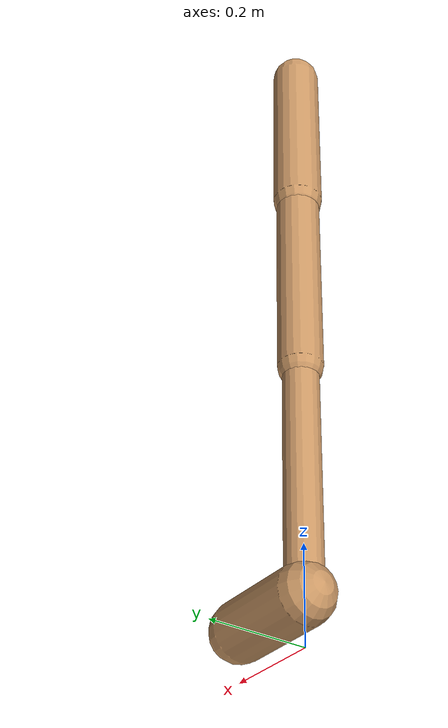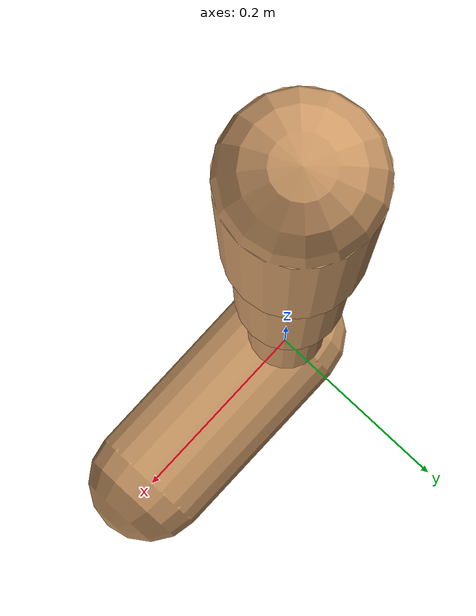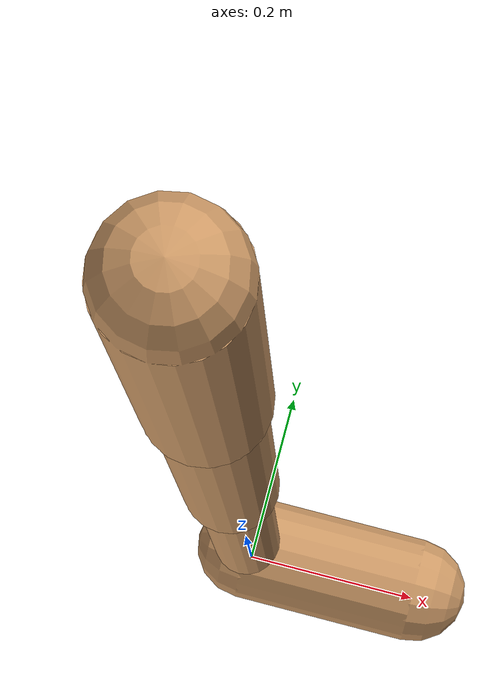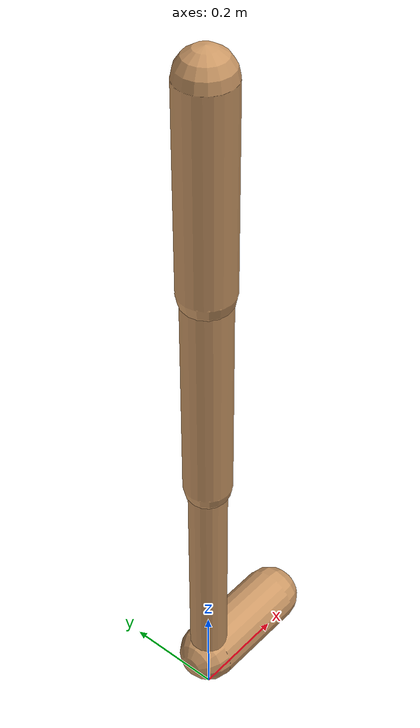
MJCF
<mujoco model="walker2d">
  <compiler angle="degree" coordinate="global" inertiafromgeom="true" />
  <default>
    <joint armature="0.01" damping=".1" limited="true" />
    <geom conaffinity="0" condim="3" contype="1" density="1000" friction="0.8 .1 .1" rgba="0.8 0.6 .4 1" />
  </default>
  <option integrator="RK4" timestep="0.002" />
  <worldbody>

    <body name="torso" pos="0 0 0.009601264277664232">
      <joint armature="0" axis="1 0 0" damping="0" limited="false" name="ignorex" pos="0 0 0" stiffness="0" type="slide" />
      <joint armature="0" axis="0 0 1" damping="0" limited="false" name="ignorez" pos="0 0 0" ref="1.25" stiffness="0" type="slide" />
      <joint armature="0" axis="0 1 0" damping="0" limited="false" name="ignorey" pos="0 0 0" stiffness="0" type="hinge" />
      <geom fromto="0 0 1.45 0 0 1.05" name="torso_geom" size="0.053742403982658976" type="capsule" />
      <body name="thigh">
        <joint axis="0 -1 0" name="thigh_joint" pos="0 0 1.05" range="-150 0" type="hinge" />
        <geom fromto="0.0 0.0 1.05 0.0 0.0 0.5954520327105801" name="thigh_geom" size="0.04728919748575422" type="capsule" />
        <body name="leg" pos="0.0 0.0 -0.004547967289419863">
          <joint axis="0 -1 0" name="leg_joint" pos="0 0 0.6" range="-150 0" type="hinge" />
          <geom fromto="0.0 0.0 0.6 0.0 0.0 0.09494670301175567" name="leg_geom" size="0.03783135798860337" type="capsule" />
          <body name="foot" pos="0.0 0.0 -0.005053296988244332">
            <joint axis="0 -1 0" name="foot_joint" pos="0 0 0.1" range="-45 45" type="hinge" />
            <geom fromto="-0.0 0.0 0.1 0.20017145594670505 0.0 0.1" name="foot_geom" size="0.060374962455476876" type="capsule" />
          </body>
        </body>
      </body>

      <body name="thigh_left">
        <joint axis="0 -1 0" name="thigh_left_joint" pos="0 0 1.05" range="-150 0" type="hinge" />
        <geom fromto="0.0 0.0 1.05 0.0 0.0 0.5954520327105801" name="thigh_left_geom" rgba=".7 .3 .6 1" size="0.04728919748575422" type="capsule" />
        <body name="leg_left" pos="0.0 0.0 -0.004547967289419863">
          <joint axis="0 -1 0" name="leg_left_joint" pos="0 0 0.6" range="-150 0" type="hinge" />
          <geom fromto="0.0 0.0 0.6 0.0 0.0 0.09494670301175567" name="leg_left_geom" rgba=".7 .3 .6 1" size="0.03783135798860337" type="capsule" />
          <body name="foot_left" pos="0.0 0.0 -0.005053296988244332">
            <joint axis="0 -1 0" name="foot_left_joint" pos="0 0 0.1" range="-45 45" type="hinge" />
            <geom fromto="-0.0 0.0 0.1 0.20017145594670505 0.0 0.1" name="foot_left_geom" rgba=".7 .3 .6 1" size="0.060374962455476876" type="capsule" />
          </body>
        </body>
      </body>
    </body>
  </worldbody>
  <actuator>

    <motor ctrllimited="true" ctrlrange="-1.0 1.0" gear="100" joint="thigh_joint" />
    <motor ctrllimited="true" ctrlrange="-1.0 1.0" gear="100" joint="leg_joint" />
    <motor ctrllimited="true" ctrlrange="-1.0 1.0" gear="100" joint="foot_joint" />
    <motor ctrllimited="true" ctrlrange="-1.0 1.0" gear="100" joint="thigh_left_joint" />
    <motor ctrllimited="true" ctrlrange="-1.0 1.0" gear="100" joint="leg_left_joint" />
    <motor ctrllimited="true" ctrlrange="-1.0 1.0" gear="100" joint="foot_left_joint" />

  </actuator>
</mujoco>
